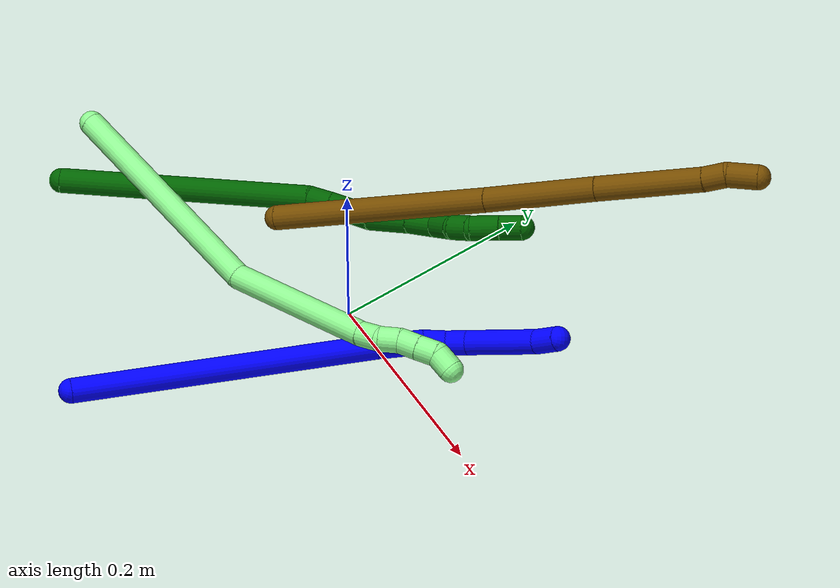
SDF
<sdf version="1.7">
 <world name="default">
  <model name="1">
   <static>0</static>
   <link name="1">
    <collision name="collision-cylinder-e_1_1_4">
     <pose>0.022921 0.064145 -0.136653 -2.70272 0.150683 -0.652706</pose>
     <geometry><cylinder><radius>0.0125</radius><length>0.305378</length></cylinder></geometry>
     <surface>
      <friction><ode><mu>1.16</mu><mu2>1.16</mu2><slip1>0</slip1><slip2>0</slip2></ode></friction>
      <contact><ode><kp>1e+06</kp><kd>1</kd><max_vel>0</max_vel><min_depth>0.001</min_depth></ode></contact>
     </surface>
    </collision>
    <visual name="visual-cylinder-e_1_1_4">
     <pose>0.022921 0.064145 -0.136653 -2.70272 0.150683 -0.652706</pose>
     <geometry><cylinder><radius>0.0125</radius><length>0.305378</length></cylinder></geometry>
     <material><ambient>0 0 1 1</ambient></material>
    </visual>
    <collision name="collision-cylinder-e_2_4_5">
     <pose>0.047817 0.135338 -0.296245 -2.8435 0.082147 -0.53429</pose>
     <geometry><cylinder><radius>0.0125</radius><length>0.048158</length></cylinder></geometry>
     <surface>
      <friction><ode><mu>1.16</mu><mu2>1.16</mu2><slip1>0</slip1><slip2>0</slip2></ode></friction>
      <contact><ode><kp>1e+06</kp><kd>1</kd><max_vel>0</max_vel><min_depth>0.001</min_depth></ode></contact>
     </surface>
    </collision>
    <visual name="visual-cylinder-e_2_4_5">
     <pose>0.047817 0.135338 -0.296245 -2.8435 0.082147 -0.53429</pose>
     <geometry><cylinder><radius>0.0125</radius><length>0.048158</length></cylinder></geometry>
     <material><ambient>0 0 1 1</ambient></material>
    </visual>
    <collision name="collision-cylinder-e_3_5_6">
     <pose>0.054937 0.147604 -0.328581 -2.63476 0.446343 -1.43916</pose>
     <geometry><cylinder><radius>0.0125</radius><length>0.023832</length></cylinder></geometry>
     <surface>
      <friction><ode><mu>1.16</mu><mu2>1.16</mu2><slip1>0</slip1><slip2>0</slip2></ode></friction>
      <contact><ode><kp>1e+06</kp><kd>1</kd><max_vel>0</max_vel><min_depth>0.001</min_depth></ode></contact>
     </surface>
    </collision>
    <visual name="visual-cylinder-e_3_5_6">
     <pose>0.054937 0.147604 -0.328581 -2.63476 0.446343 -1.43916</pose>
     <geometry><cylinder><radius>0.0125</radius><length>0.023832</length></cylinder></geometry>
     <material><ambient>0 0 1 1</ambient></material>
    </visual>
    <collision name="collision-cylinder-e_4_6_7">
     <pose>0.064917 0.158667 -0.345682 -2.49249 0.463746 -1.22387</pose>
     <geometry><cylinder><radius>0.0125</radius><length>0.021625</length></cylinder></geometry>
     <surface>
      <friction><ode><mu>1.16</mu><mu2>1.16</mu2><slip1>0</slip1><slip2>0</slip2></ode></friction>
      <contact><ode><kp>1e+06</kp><kd>1</kd><max_vel>0</max_vel><min_depth>0.001</min_depth></ode></contact>
     </surface>
    </collision>
    <visual name="visual-cylinder-e_4_6_7">
     <pose>0.064917 0.158667 -0.345682 -2.49249 0.463746 -1.22387</pose>
     <geometry><cylinder><radius>0.0125</radius><length>0.021625</length></cylinder></geometry>
     <material><ambient>0 0 1 1</ambient></material>
    </visual>
    <collision name="collision-cylinder-e_5_7_8">
     <pose>0.091701 0.188947 -0.372427 -2.23276 0.616407 -1.15509</pose>
     <geometry><cylinder><radius>0.0125</radius><length>0.075927</length></cylinder></geometry>
     <surface>
      <friction><ode><mu>1.16</mu><mu2>1.16</mu2><slip1>0</slip1><slip2>0</slip2></ode></friction>
      <contact><ode><kp>1e+06</kp><kd>1</kd><max_vel>0</max_vel><min_depth>0.001</min_depth></ode></contact>
     </surface>
    </collision>
    <visual name="visual-cylinder-e_5_7_8">
     <pose>0.091701 0.188947 -0.372427 -2.23276 0.616407 -1.15509</pose>
     <geometry><cylinder><radius>0.0125</radius><length>0.075927</length></cylinder></geometry>
     <material><ambient>0 0 1 1</ambient></material>
    </visual>
    <collision name="collision-cylinder-e_6_8_2">
     <pose>0.120514 0.222772 -0.396149 -2.0333 0.579422 -0.897833</pose>
     <geometry><cylinder><radius>0.0125</radius><length>0.02508</length></cylinder></geometry>
     <surface>
      <friction><ode><mu>1.16</mu><mu2>1.16</mu2><slip1>0</slip1><slip2>0</slip2></ode></friction>
      <contact><ode><kp>1e+06</kp><kd>1</kd><max_vel>0</max_vel><min_depth>0.001</min_depth></ode></contact>
     </surface>
    </collision>
    <visual name="visual-cylinder-e_6_8_2">
     <pose>0.120514 0.222772 -0.396149 -2.0333 0.579422 -0.897833</pose>
     <geometry><cylinder><radius>0.0125</radius><length>0.02508</length></cylinder></geometry>
     <material><ambient>0 0 1 1</ambient></material>
    </visual>
    <collision name="collision-sphere-2">
     <pose>0.12738 0.232162 -0.400831 0 -0 0</pose>
     <geometry><sphere><radius>0.0125</radius></sphere></geometry>
     <surface>
      <friction><ode><mu>1.16</mu><mu2>1.16</mu2><slip1>0</slip1><slip2>0</slip2></ode></friction>
      <contact><ode><kp>1e+06</kp><kd>1</kd><max_vel>0</max_vel><min_depth>0.001</min_depth></ode></contact>
     </surface>
    </collision>
    <visual name="visual-sphere-2">
     <pose>0.12738 0.232162 -0.400831 0 -0 0</pose>
     <geometry><sphere><radius>0.0125</radius></sphere></geometry>
     <material><ambient>0 0 1 1</ambient></material>
    </visual>
    <collision name="collision-sphere-4">
     <pose>0.045841 0.12829 -0.273305 0 -0 0</pose>
     <geometry><sphere><radius>0.0125</radius></sphere></geometry>
     <surface>
      <friction><ode><mu>1.16</mu><mu2>1.16</mu2><slip1>0</slip1><slip2>0</slip2></ode></friction>
      <contact><ode><kp>1e+06</kp><kd>1</kd><max_vel>0</max_vel><min_depth>0.001</min_depth></ode></contact>
     </surface>
    </collision>
    <visual name="visual-sphere-4">
     <pose>0.045841 0.12829 -0.273305 0 -0 0</pose>
     <geometry><sphere><radius>0.0125</radius></sphere></geometry>
     <material><ambient>0 0 1 1</ambient></material>
    </visual>
    <collision name="collision-sphere-1">
     <geometry><sphere><radius>0.0125</radius></sphere></geometry>
     <surface>
      <friction><ode><mu>1.16</mu><mu2>1.16</mu2><slip1>0</slip1><slip2>0</slip2></ode></friction>
      <contact><ode><kp>1e+06</kp><kd>1</kd><max_vel>0</max_vel><min_depth>0.001</min_depth></ode></contact>
     </surface>
    </collision>
    <visual name="visual-sphere-1">
     <geometry><sphere><radius>0.0125</radius></sphere></geometry>
     <material><ambient>0 0 1 1</ambient></material>
    </visual>
    <collision name="collision-sphere-8">
     <pose>0.113648 0.213381 -0.391467 0 -0 0</pose>
     <geometry><sphere><radius>0.0125</radius></sphere></geometry>
     <surface>
      <friction><ode><mu>1.16</mu><mu2>1.16</mu2><slip1>0</slip1><slip2>0</slip2></ode></friction>
      <contact><ode><kp>1e+06</kp><kd>1</kd><max_vel>0</max_vel><min_depth>0.001</min_depth></ode></contact>
     </surface>
    </collision>
    <visual name="visual-sphere-8">
     <pose>0.113648 0.213381 -0.391467 0 -0 0</pose>
     <geometry><sphere><radius>0.0125</radius></sphere></geometry>
     <material><ambient>0 0 1 1</ambient></material>
    </visual>
    <collision name="collision-sphere-5">
     <pose>0.049793 0.142386 -0.319184 0 -0 0</pose>
     <geometry><sphere><radius>0.0125</radius></sphere></geometry>
     <surface>
      <friction><ode><mu>1.16</mu><mu2>1.16</mu2><slip1>0</slip1><slip2>0</slip2></ode></friction>
      <contact><ode><kp>1e+06</kp><kd>1</kd><max_vel>0</max_vel><min_depth>0.001</min_depth></ode></contact>
     </surface>
    </collision>
    <visual name="visual-sphere-5">
     <pose>0.049793 0.142386 -0.319184 0 -0 0</pose>
     <geometry><sphere><radius>0.0125</radius></sphere></geometry>
     <material><ambient>0 0 1 1</ambient></material>
    </visual>
    <collision name="collision-sphere-6">
     <pose>0.060081 0.152821 -0.337978 0 -0 0</pose>
     <geometry><sphere><radius>0.0125</radius></sphere></geometry>
     <surface>
      <friction><ode><mu>1.16</mu><mu2>1.16</mu2><slip1>0</slip1><slip2>0</slip2></ode></friction>
      <contact><ode><kp>1e+06</kp><kd>1</kd><max_vel>0</max_vel><min_depth>0.001</min_depth></ode></contact>
     </surface>
    </collision>
    <visual name="visual-sphere-6">
     <pose>0.060081 0.152821 -0.337978 0 -0 0</pose>
     <geometry><sphere><radius>0.0125</radius></sphere></geometry>
     <material><ambient>0 0 1 1</ambient></material>
    </visual>
    <collision name="collision-sphere-7">
     <pose>0.069754 0.164512 -0.353386 0 -0 0</pose>
     <geometry><sphere><radius>0.0125</radius></sphere></geometry>
     <surface>
      <friction><ode><mu>1.16</mu><mu2>1.16</mu2><slip1>0</slip1><slip2>0</slip2></ode></friction>
      <contact><ode><kp>1e+06</kp><kd>1</kd><max_vel>0</max_vel><min_depth>0.001</min_depth></ode></contact>
     </surface>
    </collision>
    <visual name="visual-sphere-7">
     <pose>0.069754 0.164512 -0.353386 0 -0 0</pose>
     <geometry><sphere><radius>0.0125</radius></sphere></geometry>
     <material><ambient>0 0 1 1</ambient></material>
    </visual>
    <inertial>
     <pose>0.044001 0.105977 -0.219032 0 -0 0</pose>
     <mass>0.5</mass>
     <inertia>
      <ixx>0.000436</ixx>
      <ixy>0</ixy>
      <ixz>0</ixz>
      <iyy>-0.003079</iyy>
      <iyz>0</iyz>
      <izz>-0.00145</izz>
     </inertia>
    </inertial>
   </link>
   <pose>-0.056662 -0.288505 0.031973 1.07527 -0.117271 -0.23255</pose>
  </model>
  <model name="6">
   <static>0</static>
   <link name="6">
    <collision name="collision-cylinder-e_1_1_4">
     <pose>0.065911 0.107809 -0.009285 -1.65671 0.547092 -0.593507</pose>
     <geometry><cylinder><radius>0.0125</radius><length>0.253402</length></cylinder></geometry>
     <surface>
      <friction><ode><mu>1.16</mu><mu2>1.16</mu2><slip1>0</slip1><slip2>0</slip2></ode></friction>
      <contact><ode><kp>1e+06</kp><kd>1</kd><max_vel>0</max_vel><min_depth>0.001</min_depth></ode></contact>
     </surface>
    </collision>
    <visual name="visual-cylinder-e_1_1_4">
     <pose>0.065911 0.107809 -0.009285 -1.65671 0.547092 -0.593507</pose>
     <geometry><cylinder><radius>0.0125</radius><length>0.253402</length></cylinder></geometry>
     <material><ambient>0 0.392157 0.003922 1</ambient></material>
    </visual>
    <collision name="collision-cylinder-e_2_4_5">
     <pose>0.13975 0.223957 -0.01952 -1.68426 0.756965 -0.838283</pose>
     <geometry><cylinder><radius>0.0125</radius><length>0.023093</length></cylinder></geometry>
     <surface>
      <friction><ode><mu>1.16</mu><mu2>1.16</mu2><slip1>0</slip1><slip2>0</slip2></ode></friction>
      <contact><ode><kp>1e+06</kp><kd>1</kd><max_vel>0</max_vel><min_depth>0.001</min_depth></ode></contact>
     </surface>
    </collision>
    <visual name="visual-cylinder-e_2_4_5">
     <pose>0.13975 0.223957 -0.01952 -1.68426 0.756965 -0.838283</pose>
     <geometry><cylinder><radius>0.0125</radius><length>0.023093</length></cylinder></geometry>
     <material><ambient>0 0.392157 0.003922 1</ambient></material>
    </visual>
    <collision name="collision-cylinder-e_3_5_6">
     <pose>0.163622 0.247739 -0.019375 -1.49998 0.800094 -0.750503</pose>
     <geometry><cylinder><radius>0.0125</radius><length>0.044445</length></cylinder></geometry>
     <surface>
      <friction><ode><mu>1.16</mu><mu2>1.16</mu2><slip1>0</slip1><slip2>0</slip2></ode></friction>
      <contact><ode><kp>1e+06</kp><kd>1</kd><max_vel>0</max_vel><min_depth>0.001</min_depth></ode></contact>
     </surface>
    </collision>
    <visual name="visual-cylinder-e_3_5_6">
     <pose>0.163622 0.247739 -0.019375 -1.49998 0.800094 -0.750503</pose>
     <geometry><cylinder><radius>0.0125</radius><length>0.044445</length></cylinder></geometry>
     <material><ambient>0 0.392157 0.003922 1</ambient></material>
    </visual>
    <collision name="collision-cylinder-e_4_6_7">
     <pose>0.191883 0.281657 -0.011349 -1.21191 0.55802 -0.39192</pose>
     <geometry><cylinder><radius>0.0125</radius><length>0.046524</length></cylinder></geometry>
     <surface>
      <friction><ode><mu>1.16</mu><mu2>1.16</mu2><slip1>0</slip1><slip2>0</slip2></ode></friction>
      <contact><ode><kp>1e+06</kp><kd>1</kd><max_vel>0</max_vel><min_depth>0.001</min_depth></ode></contact>
     </surface>
    </collision>
    <visual name="visual-cylinder-e_4_6_7">
     <pose>0.191883 0.281657 -0.011349 -1.21191 0.55802 -0.39192</pose>
     <geometry><cylinder><radius>0.0125</radius><length>0.046524</length></cylinder></geometry>
     <material><ambient>0 0.392157 0.003922 1</ambient></material>
    </visual>
    <collision name="collision-cylinder-e_5_7_8">
     <pose>0.213056 0.311847 0.000531 -1.17108 0.608305 -0.410433</pose>
     <geometry><cylinder><radius>0.0125</radius><length>0.030993</length></cylinder></geometry>
     <surface>
      <friction><ode><mu>1.16</mu><mu2>1.16</mu2><slip1>0</slip1><slip2>0</slip2></ode></friction>
      <contact><ode><kp>1e+06</kp><kd>1</kd><max_vel>0</max_vel><min_depth>0.001</min_depth></ode></contact>
     </surface>
    </collision>
    <visual name="visual-cylinder-e_5_7_8">
     <pose>0.213056 0.311847 0.000531 -1.17108 0.608305 -0.410433</pose>
     <geometry><cylinder><radius>0.0125</radius><length>0.030993</length></cylinder></geometry>
     <material><ambient>0 0.392157 0.003922 1</ambient></material>
    </visual>
    <collision name="collision-cylinder-e_6_8_9">
     <pose>0.22852 0.331915 0.015052 -0.717532 0.479621 -0.182873</pose>
     <geometry><cylinder><radius>0.0125</radius><length>0.028642</length></cylinder></geometry>
     <surface>
      <friction><ode><mu>1.16</mu><mu2>1.16</mu2><slip1>0</slip1><slip2>0</slip2></ode></friction>
      <contact><ode><kp>1e+06</kp><kd>1</kd><max_vel>0</max_vel><min_depth>0.001</min_depth></ode></contact>
     </surface>
    </collision>
    <visual name="visual-cylinder-e_6_8_9">
     <pose>0.22852 0.331915 0.015052 -0.717532 0.479621 -0.182873</pose>
     <geometry><cylinder><radius>0.0125</radius><length>0.028642</length></cylinder></geometry>
     <material><ambient>0 0.392157 0.003922 1</ambient></material>
    </visual>
    <collision name="collision-cylinder-e_7_9_10">
     <pose>0.240555 0.348689 0.028919 -1.09907 0.521161 -0.323763</pose>
     <geometry><cylinder><radius>0.0125</radius><length>0.021797</length></cylinder></geometry>
     <surface>
      <friction><ode><mu>1.16</mu><mu2>1.16</mu2><slip1>0</slip1><slip2>0</slip2></ode></friction>
      <contact><ode><kp>1e+06</kp><kd>1</kd><max_vel>0</max_vel><min_depth>0.001</min_depth></ode></contact>
     </surface>
    </collision>
    <visual name="visual-cylinder-e_7_9_10">
     <pose>0.240555 0.348689 0.028919 -1.09907 0.521161 -0.323763</pose>
     <geometry><cylinder><radius>0.0125</radius><length>0.021797</length></cylinder></geometry>
     <material><ambient>0 0.392157 0.003922 1</ambient></material>
    </visual>
    <collision name="collision-cylinder-e_8_10_11">
     <pose>0.252465 0.369982 0.032879 -1.59684 0.46645 -0.4783</pose>
     <geometry><cylinder><radius>0.0125</radius><length>0.028837</length></cylinder></geometry>
     <surface>
      <friction><ode><mu>1.16</mu><mu2>1.16</mu2><slip1>0</slip1><slip2>0</slip2></ode></friction>
      <contact><ode><kp>1e+06</kp><kd>1</kd><max_vel>0</max_vel><min_depth>0.001</min_depth></ode></contact>
     </surface>
    </collision>
    <visual name="visual-cylinder-e_8_10_11">
     <pose>0.252465 0.369982 0.032879 -1.59684 0.46645 -0.4783</pose>
     <geometry><cylinder><radius>0.0125</radius><length>0.028837</length></cylinder></geometry>
     <material><ambient>0 0.392157 0.003922 1</ambient></material>
    </visual>
    <collision name="collision-cylinder-e_9_11_2">
     <pose>0.26396 0.392756 0.031638 -1.66207 0.466857 -0.509706</pose>
     <geometry><cylinder><radius>0.0125</radius><length>0.022267</length></cylinder></geometry>
     <surface>
      <friction><ode><mu>1.16</mu><mu2>1.16</mu2><slip1>0</slip1><slip2>0</slip2></ode></friction>
      <contact><ode><kp>1e+06</kp><kd>1</kd><max_vel>0</max_vel><min_depth>0.001</min_depth></ode></contact>
     </surface>
    </collision>
    <visual name="visual-cylinder-e_9_11_2">
     <pose>0.26396 0.392756 0.031638 -1.66207 0.466857 -0.509706</pose>
     <geometry><cylinder><radius>0.0125</radius><length>0.022267</length></cylinder></geometry>
     <material><ambient>0 0.392157 0.003922 1</ambient></material>
    </visual>
    <collision name="collision-sphere-2">
     <pose>0.268972 0.402657 0.030731 0 -0 0</pose>
     <geometry><sphere><radius>0.0125</radius></sphere></geometry>
     <surface>
      <friction><ode><mu>1.16</mu><mu2>1.16</mu2><slip1>0</slip1><slip2>0</slip2></ode></friction>
      <contact><ode><kp>1e+06</kp><kd>1</kd><max_vel>0</max_vel><min_depth>0.001</min_depth></ode></contact>
     </surface>
    </collision>
    <visual name="visual-sphere-2">
     <pose>0.268972 0.402657 0.030731 0 -0 0</pose>
     <geometry><sphere><radius>0.0125</radius></sphere></geometry>
     <material><ambient>0 0.392157 0.003922 1</ambient></material>
    </visual>
    <collision name="collision-sphere-11">
     <pose>0.258949 0.382856 0.032544 0 -0 0</pose>
     <geometry><sphere><radius>0.0125</radius></sphere></geometry>
     <surface>
      <friction><ode><mu>1.16</mu><mu2>1.16</mu2><slip1>0</slip1><slip2>0</slip2></ode></friction>
      <contact><ode><kp>1e+06</kp><kd>1</kd><max_vel>0</max_vel><min_depth>0.001</min_depth></ode></contact>
     </surface>
    </collision>
    <visual name="visual-sphere-11">
     <pose>0.258949 0.382856 0.032544 0 -0 0</pose>
     <geometry><sphere><radius>0.0125</radius></sphere></geometry>
     <material><ambient>0 0.392157 0.003922 1</ambient></material>
    </visual>
    <collision name="collision-sphere-10">
     <pose>0.245981 0.357108 0.033214 0 -0 0</pose>
     <geometry><sphere><radius>0.0125</radius></sphere></geometry>
     <surface>
      <friction><ode><mu>1.16</mu><mu2>1.16</mu2><slip1>0</slip1><slip2>0</slip2></ode></friction>
      <contact><ode><kp>1e+06</kp><kd>1</kd><max_vel>0</max_vel><min_depth>0.001</min_depth></ode></contact>
     </surface>
    </collision>
    <visual name="visual-sphere-10">
     <pose>0.245981 0.357108 0.033214 0 -0 0</pose>
     <geometry><sphere><radius>0.0125</radius></sphere></geometry>
     <material><ambient>0 0.392157 0.003922 1</ambient></material>
    </visual>
    <collision name="collision-sphere-9">
     <pose>0.235128 0.340269 0.024625 0 -0 0</pose>
     <geometry><sphere><radius>0.0125</radius></sphere></geometry>
     <surface>
      <friction><ode><mu>1.16</mu><mu2>1.16</mu2><slip1>0</slip1><slip2>0</slip2></ode></friction>
      <contact><ode><kp>1e+06</kp><kd>1</kd><max_vel>0</max_vel><min_depth>0.001</min_depth></ode></contact>
     </surface>
    </collision>
    <visual name="visual-sphere-9">
     <pose>0.235128 0.340269 0.024625 0 -0 0</pose>
     <geometry><sphere><radius>0.0125</radius></sphere></geometry>
     <material><ambient>0 0.392157 0.003922 1</ambient></material>
    </visual>
    <collision name="collision-sphere-4">
     <pose>0.131821 0.215617 -0.01857 0 -0 0</pose>
     <geometry><sphere><radius>0.0125</radius></sphere></geometry>
     <surface>
      <friction><ode><mu>1.16</mu><mu2>1.16</mu2><slip1>0</slip1><slip2>0</slip2></ode></friction>
      <contact><ode><kp>1e+06</kp><kd>1</kd><max_vel>0</max_vel><min_depth>0.001</min_depth></ode></contact>
     </surface>
    </collision>
    <visual name="visual-sphere-4">
     <pose>0.131821 0.215617 -0.01857 0 -0 0</pose>
     <geometry><sphere><radius>0.0125</radius></sphere></geometry>
     <material><ambient>0 0.392157 0.003922 1</ambient></material>
    </visual>
    <collision name="collision-sphere-1">
     <geometry><sphere><radius>0.0125</radius></sphere></geometry>
     <surface>
      <friction><ode><mu>1.16</mu><mu2>1.16</mu2><slip1>0</slip1><slip2>0</slip2></ode></friction>
      <contact><ode><kp>1e+06</kp><kd>1</kd><max_vel>0</max_vel><min_depth>0.001</min_depth></ode></contact>
     </surface>
    </collision>
    <visual name="visual-sphere-1">
     <geometry><sphere><radius>0.0125</radius></sphere></geometry>
     <material><ambient>0 0.392157 0.003922 1</ambient></material>
    </visual>
    <collision name="collision-sphere-8">
     <pose>0.221912 0.323561 0.00548 0 -0 0</pose>
     <geometry><sphere><radius>0.0125</radius></sphere></geometry>
     <surface>
      <friction><ode><mu>1.16</mu><mu2>1.16</mu2><slip1>0</slip1><slip2>0</slip2></ode></friction>
      <contact><ode><kp>1e+06</kp><kd>1</kd><max_vel>0</max_vel><min_depth>0.001</min_depth></ode></contact>
     </surface>
    </collision>
    <visual name="visual-sphere-8">
     <pose>0.221912 0.323561 0.00548 0 -0 0</pose>
     <geometry><sphere><radius>0.0125</radius></sphere></geometry>
     <material><ambient>0 0.392157 0.003922 1</ambient></material>
    </visual>
    <collision name="collision-sphere-5">
     <pose>0.147679 0.232296 -0.020471 0 -0 0</pose>
     <geometry><sphere><radius>0.0125</radius></sphere></geometry>
     <surface>
      <friction><ode><mu>1.16</mu><mu2>1.16</mu2><slip1>0</slip1><slip2>0</slip2></ode></friction>
      <contact><ode><kp>1e+06</kp><kd>1</kd><max_vel>0</max_vel><min_depth>0.001</min_depth></ode></contact>
     </surface>
    </collision>
    <visual name="visual-sphere-5">
     <pose>0.147679 0.232296 -0.020471 0 -0 0</pose>
     <geometry><sphere><radius>0.0125</radius></sphere></geometry>
     <material><ambient>0 0.392157 0.003922 1</ambient></material>
    </visual>
    <collision name="collision-sphere-6">
     <pose>0.179565 0.263181 -0.01828 0 -0 0</pose>
     <geometry><sphere><radius>0.0125</radius></sphere></geometry>
     <surface>
      <friction><ode><mu>1.16</mu><mu2>1.16</mu2><slip1>0</slip1><slip2>0</slip2></ode></friction>
      <contact><ode><kp>1e+06</kp><kd>1</kd><max_vel>0</max_vel><min_depth>0.001</min_depth></ode></contact>
     </surface>
    </collision>
    <visual name="visual-sphere-6">
     <pose>0.179565 0.263181 -0.01828 0 -0 0</pose>
     <geometry><sphere><radius>0.0125</radius></sphere></geometry>
     <material><ambient>0 0.392157 0.003922 1</ambient></material>
    </visual>
    <collision name="collision-sphere-7">
     <pose>0.2042 0.300133 -0.004418 0 -0 0</pose>
     <geometry><sphere><radius>0.0125</radius></sphere></geometry>
     <surface>
      <friction><ode><mu>1.16</mu><mu2>1.16</mu2><slip1>0</slip1><slip2>0</slip2></ode></friction>
      <contact><ode><kp>1e+06</kp><kd>1</kd><max_vel>0</max_vel><min_depth>0.001</min_depth></ode></contact>
     </surface>
    </collision>
    <visual name="visual-sphere-7">
     <pose>0.2042 0.300133 -0.004418 0 -0 0</pose>
     <geometry><sphere><radius>0.0125</radius></sphere></geometry>
     <material><ambient>0 0.392157 0.003922 1</ambient></material>
    </visual>
    <inertial>
     <pose>0.135357 0.205584 -0.002924 0 -0 0</pose>
     <mass>0.5</mass>
     <inertia>
      <ixx>0.000347</ixx>
      <ixy>0</ixy>
      <ixz>0</ixz>
      <iyy>-0.000318</iyy>
      <iyz>0</iyz>
      <izz>-0.001916</izz>
     </inertia>
    </inertial>
   </link>
   <pose>-0.275079 -0.16623 0.036444 0.43975 0.363596 -0.098549</pose>
  </model>
  <model name="12">
   <static>0</static>
   <link name="12">
    <collision name="collision-cylinder-e_1_1_4">
     <pose>0.039968 0.046078 0.093718 -0.456956 0.365516 -0.085903</pose>
     <geometry><cylinder><radius>0.0125</radius><length>0.223639</length></cylinder></geometry>
     <surface>
      <friction><ode><mu>1.16</mu><mu2>1.16</mu2><slip1>0</slip1><slip2>0</slip2></ode></friction>
      <contact><ode><kp>1e+06</kp><kd>1</kd><max_vel>0</max_vel><min_depth>0.001</min_depth></ode></contact>
     </surface>
    </collision>
    <visual name="visual-cylinder-e_1_1_4">
     <pose>0.039968 0.046078 0.093718 -0.456956 0.365516 -0.085903</pose>
     <geometry><cylinder><radius>0.0125</radius><length>0.223639</length></cylinder></geometry>
     <material><ambient>0.466667 0.301961 0 1</ambient></material>
    </visual>
    <collision name="collision-cylinder-e_2_4_5">
     <pose>0.099252 0.116754 0.235085 -0.476561 0.345749 -0.084777</pose>
     <geometry><cylinder><radius>0.0125</radius><length>0.113994</length></cylinder></geometry>
     <surface>
      <friction><ode><mu>1.16</mu><mu2>1.16</mu2><slip1>0</slip1><slip2>0</slip2></ode></friction>
      <contact><ode><kp>1e+06</kp><kd>1</kd><max_vel>0</max_vel><min_depth>0.001</min_depth></ode></contact>
     </surface>
    </collision>
    <visual name="visual-cylinder-e_2_4_5">
     <pose>0.099252 0.116754 0.235085 -0.476561 0.345749 -0.084777</pose>
     <geometry><cylinder><radius>0.0125</radius><length>0.113994</length></cylinder></geometry>
     <material><ambient>0.466667 0.301961 0 1</ambient></material>
    </visual>
    <collision name="collision-cylinder-e_3_5_6">
     <pose>0.13729 0.166073 0.327292 -0.506504 0.352106 -0.092017</pose>
     <geometry><cylinder><radius>0.0125</radius><length>0.108573</length></cylinder></geometry>
     <surface>
      <friction><ode><mu>1.16</mu><mu2>1.16</mu2><slip1>0</slip1><slip2>0</slip2></ode></friction>
      <contact><ode><kp>1e+06</kp><kd>1</kd><max_vel>0</max_vel><min_depth>0.001</min_depth></ode></contact>
     </surface>
    </collision>
    <visual name="visual-cylinder-e_3_5_6">
     <pose>0.13729 0.166073 0.327292 -0.506504 0.352106 -0.092017</pose>
     <geometry><cylinder><radius>0.0125</radius><length>0.108573</length></cylinder></geometry>
     <material><ambient>0.466667 0.301961 0 1</ambient></material>
    </visual>
    <collision name="collision-cylinder-e_4_6_7">
     <pose>0.15878 0.196229 0.381708 -0.503991 0.241093 -0.062356</pose>
     <geometry><cylinder><radius>0.0125</radius><length>0.023185</length></cylinder></geometry>
     <surface>
      <friction><ode><mu>1.16</mu><mu2>1.16</mu2><slip1>0</slip1><slip2>0</slip2></ode></friction>
      <contact><ode><kp>1e+06</kp><kd>1</kd><max_vel>0</max_vel><min_depth>0.001</min_depth></ode></contact>
     </surface>
    </collision>
    <visual name="visual-cylinder-e_4_6_7">
     <pose>0.15878 0.196229 0.381708 -0.503991 0.241093 -0.062356</pose>
     <geometry><cylinder><radius>0.0125</radius><length>0.023185</length></cylinder></geometry>
     <material><ambient>0.466667 0.301961 0 1</ambient></material>
    </visual>
    <collision name="collision-cylinder-e_5_7_2">
     <pose>0.168499 0.210694 0.401783 -0.723754 0.471471 -0.181356</pose>
     <geometry><cylinder><radius>0.0125</radius><length>0.030608</length></cylinder></geometry>
     <surface>
      <friction><ode><mu>1.16</mu><mu2>1.16</mu2><slip1>0</slip1><slip2>0</slip2></ode></friction>
      <contact><ode><kp>1e+06</kp><kd>1</kd><max_vel>0</max_vel><min_depth>0.001</min_depth></ode></contact>
     </surface>
    </collision>
    <visual name="visual-cylinder-e_5_7_2">
     <pose>0.168499 0.210694 0.401783 -0.723754 0.471471 -0.181356</pose>
     <geometry><cylinder><radius>0.0125</radius><length>0.030608</length></cylinder></geometry>
     <material><ambient>0.466667 0.301961 0 1</ambient></material>
    </visual>
    <collision name="collision-sphere-2">
     <pose>0.175451 0.219723 0.411999 0 -0 0</pose>
     <geometry><sphere><radius>0.0125</radius></sphere></geometry>
     <surface>
      <friction><ode><mu>1.16</mu><mu2>1.16</mu2><slip1>0</slip1><slip2>0</slip2></ode></friction>
      <contact><ode><kp>1e+06</kp><kd>1</kd><max_vel>0</max_vel><min_depth>0.001</min_depth></ode></contact>
     </surface>
    </collision>
    <visual name="visual-sphere-2">
     <pose>0.175451 0.219723 0.411999 0 -0 0</pose>
     <geometry><sphere><radius>0.0125</radius></sphere></geometry>
     <material><ambient>0.466667 0.301961 0 1</ambient></material>
    </visual>
    <collision name="collision-sphere-7">
     <pose>0.161548 0.201666 0.391566 0 -0 0</pose>
     <geometry><sphere><radius>0.0125</radius></sphere></geometry>
     <surface>
      <friction><ode><mu>1.16</mu><mu2>1.16</mu2><slip1>0</slip1><slip2>0</slip2></ode></friction>
      <contact><ode><kp>1e+06</kp><kd>1</kd><max_vel>0</max_vel><min_depth>0.001</min_depth></ode></contact>
     </surface>
    </collision>
    <visual name="visual-sphere-7">
     <pose>0.161548 0.201666 0.391566 0 -0 0</pose>
     <geometry><sphere><radius>0.0125</radius></sphere></geometry>
     <material><ambient>0.466667 0.301961 0 1</ambient></material>
    </visual>
    <collision name="collision-sphere-6">
     <pose>0.156013 0.190793 0.371851 0 -0 0</pose>
     <geometry><sphere><radius>0.0125</radius></sphere></geometry>
     <surface>
      <friction><ode><mu>1.16</mu><mu2>1.16</mu2><slip1>0</slip1><slip2>0</slip2></ode></friction>
      <contact><ode><kp>1e+06</kp><kd>1</kd><max_vel>0</max_vel><min_depth>0.001</min_depth></ode></contact>
     </surface>
    </collision>
    <visual name="visual-sphere-6">
     <pose>0.156013 0.190793 0.371851 0 -0 0</pose>
     <geometry><sphere><radius>0.0125</radius></sphere></geometry>
     <material><ambient>0.466667 0.301961 0 1</ambient></material>
    </visual>
    <collision name="collision-sphere-5">
     <pose>0.118568 0.141353 0.282734 0 -0 0</pose>
     <geometry><sphere><radius>0.0125</radius></sphere></geometry>
     <surface>
      <friction><ode><mu>1.16</mu><mu2>1.16</mu2><slip1>0</slip1><slip2>0</slip2></ode></friction>
      <contact><ode><kp>1e+06</kp><kd>1</kd><max_vel>0</max_vel><min_depth>0.001</min_depth></ode></contact>
     </surface>
    </collision>
    <visual name="visual-sphere-5">
     <pose>0.118568 0.141353 0.282734 0 -0 0</pose>
     <geometry><sphere><radius>0.0125</radius></sphere></geometry>
     <material><ambient>0.466667 0.301961 0 1</ambient></material>
    </visual>
    <collision name="collision-sphere-1">
     <geometry><sphere><radius>0.0125</radius></sphere></geometry>
     <surface>
      <friction><ode><mu>1.16</mu><mu2>1.16</mu2><slip1>0</slip1><slip2>0</slip2></ode></friction>
      <contact><ode><kp>1e+06</kp><kd>1</kd><max_vel>0</max_vel><min_depth>0.001</min_depth></ode></contact>
     </surface>
    </collision>
    <visual name="visual-sphere-1">
     <geometry><sphere><radius>0.0125</radius></sphere></geometry>
     <material><ambient>0.466667 0.301961 0 1</ambient></material>
    </visual>
    <collision name="collision-sphere-4">
     <pose>0.079936 0.092155 0.187436 0 -0 0</pose>
     <geometry><sphere><radius>0.0125</radius></sphere></geometry>
     <surface>
      <friction><ode><mu>1.16</mu><mu2>1.16</mu2><slip1>0</slip1><slip2>0</slip2></ode></friction>
      <contact><ode><kp>1e+06</kp><kd>1</kd><max_vel>0</max_vel><min_depth>0.001</min_depth></ode></contact>
     </surface>
    </collision>
    <visual name="visual-sphere-4">
     <pose>0.079936 0.092155 0.187436 0 -0 0</pose>
     <geometry><sphere><radius>0.0125</radius></sphere></geometry>
     <material><ambient>0.466667 0.301961 0 1</ambient></material>
    </visual>
    <inertial>
     <pose>0.087995 0.105287 0.208881 0 -0 0</pose>
     <mass>0.5</mass>
     <inertia>
      <ixx>0.001022</ixx>
      <ixy>0</ixy>
      <ixz>0</ixz>
      <iyy>0.000993</iyy>
      <iyz>0</iyz>
      <izz>-0.000884</izz>
     </inertia>
    </inertial>
   </link>
   <pose>-0.101267 -0.018909 0.062245 -0.61179 0.253968 -0.230481</pose>
  </model>
  <model name="13">
   <static>0</static>
   <link name="13">
    <collision name="collision-cylinder-e_1_1_4">
     <pose>0.004685 -0.007091 -0.119666 3.0824 0.03906 1.16648</pose>
     <geometry><cylinder><radius>0.0125</radius><length>0.239935</length></cylinder></geometry>
     <surface>
      <friction><ode><mu>1.16</mu><mu2>1.16</mu2><slip1>0</slip1><slip2>0</slip2></ode></friction>
      <contact><ode><kp>1e+06</kp><kd>1</kd><max_vel>0</max_vel><min_depth>0.001</min_depth></ode></contact>
     </surface>
    </collision>
    <visual name="visual-cylinder-e_1_1_4">
     <pose>0.004685 -0.007091 -0.119666 3.0824 0.03906 1.16648</pose>
     <geometry><cylinder><radius>0.0125</radius><length>0.239935</length></cylinder></geometry>
     <material><ambient>0.564706 0.984314 0.572549 1</ambient></material>
    </visual>
    <collision name="collision-cylinder-e_2_4_5">
     <pose>0.038248 -0.018292 -0.312529 3.08551 0.375249 2.84824</pose>
     <geometry><cylinder><radius>0.0125</radius><length>0.157589</length></cylinder></geometry>
     <surface>
      <friction><ode><mu>1.16</mu><mu2>1.16</mu2><slip1>0</slip1><slip2>0</slip2></ode></friction>
      <contact><ode><kp>1e+06</kp><kd>1</kd><max_vel>0</max_vel><min_depth>0.001</min_depth></ode></contact>
     </surface>
    </collision>
    <visual name="visual-cylinder-e_2_4_5">
     <pose>0.038248 -0.018292 -0.312529 3.08551 0.375249 2.84824</pose>
     <geometry><cylinder><radius>0.0125</radius><length>0.157589</length></cylinder></geometry>
     <material><ambient>0.564706 0.984314 0.572549 1</ambient></material>
    </visual>
    <collision name="collision-cylinder-e_3_5_6">
     <pose>0.072538 -0.02286 -0.395277 3.09366 0.514953 2.96003</pose>
     <geometry><cylinder><radius>0.0125</radius><length>0.021975</length></cylinder></geometry>
     <surface>
      <friction><ode><mu>1.16</mu><mu2>1.16</mu2><slip1>0</slip1><slip2>0</slip2></ode></friction>
      <contact><ode><kp>1e+06</kp><kd>1</kd><max_vel>0</max_vel><min_depth>0.001</min_depth></ode></contact>
     </surface>
    </collision>
    <visual name="visual-cylinder-e_3_5_6">
     <pose>0.072538 -0.02286 -0.395277 3.09366 0.514953 2.96003</pose>
     <geometry><cylinder><radius>0.0125</radius><length>0.021975</length></cylinder></geometry>
     <material><ambient>0.564706 0.984314 0.572549 1</ambient></material>
    </visual>
    <collision name="collision-cylinder-e_4_6_7">
     <pose>0.083583 -0.019656 -0.41256 -2.69922 0.582392 -1.85427</pose>
     <geometry><cylinder><radius>0.0125</radius><length>0.020488</length></cylinder></geometry>
     <surface>
      <friction><ode><mu>1.16</mu><mu2>1.16</mu2><slip1>0</slip1><slip2>0</slip2></ode></friction>
      <contact><ode><kp>1e+06</kp><kd>1</kd><max_vel>0</max_vel><min_depth>0.001</min_depth></ode></contact>
     </surface>
    </collision>
    <visual name="visual-cylinder-e_4_6_7">
     <pose>0.083583 -0.019656 -0.41256 -2.69922 0.582392 -1.85427</pose>
     <geometry><cylinder><radius>0.0125</radius><length>0.020488</length></cylinder></geometry>
     <material><ambient>0.564706 0.984314 0.572549 1</ambient></material>
    </visual>
    <collision name="collision-cylinder-e_5_7_8">
     <pose>0.092923 -0.014243 -0.429418 -2.95214 0.379389 -2.22256</pose>
     <geometry><cylinder><radius>0.0125</radius><length>0.020009</length></cylinder></geometry>
     <surface>
      <friction><ode><mu>1.16</mu><mu2>1.16</mu2><slip1>0</slip1><slip2>0</slip2></ode></friction>
      <contact><ode><kp>1e+06</kp><kd>1</kd><max_vel>0</max_vel><min_depth>0.001</min_depth></ode></contact>
     </surface>
    </collision>
    <visual name="visual-cylinder-e_5_7_8">
     <pose>0.092923 -0.014243 -0.429418 -2.95214 0.379389 -2.22256</pose>
     <geometry><cylinder><radius>0.0125</radius><length>0.020009</length></cylinder></geometry>
     <material><ambient>0.564706 0.984314 0.572549 1</ambient></material>
    </visual>
    <collision name="collision-cylinder-e_6_8_9">
     <pose>0.100454 -0.010517 -0.447571 -2.92608 0.392646 -2.14529</pose>
     <geometry><cylinder><radius>0.0125</radius><length>0.020001</length></cylinder></geometry>
     <surface>
      <friction><ode><mu>1.16</mu><mu2>1.16</mu2><slip1>0</slip1><slip2>0</slip2></ode></friction>
      <contact><ode><kp>1e+06</kp><kd>1</kd><max_vel>0</max_vel><min_depth>0.001</min_depth></ode></contact>
     </surface>
    </collision>
    <visual name="visual-cylinder-e_6_8_9">
     <pose>0.100454 -0.010517 -0.447571 -2.92608 0.392646 -2.14529</pose>
     <geometry><cylinder><radius>0.0125</radius><length>0.020001</length></cylinder></geometry>
     <material><ambient>0.564706 0.984314 0.572549 1</ambient></material>
    </visual>
    <collision name="collision-cylinder-e_7_9_2">
     <pose>0.103252 -0.007431 -0.466483 -3.02979 -0.103044 1.48916</pose>
     <geometry><cylinder><radius>0.0125</radius><length>0.020004</length></cylinder></geometry>
     <surface>
      <friction><ode><mu>1.16</mu><mu2>1.16</mu2><slip1>0</slip1><slip2>0</slip2></ode></friction>
      <contact><ode><kp>1e+06</kp><kd>1</kd><max_vel>0</max_vel><min_depth>0.001</min_depth></ode></contact>
     </surface>
    </collision>
    <visual name="visual-cylinder-e_7_9_2">
     <pose>0.103252 -0.007431 -0.466483 -3.02979 -0.103044 1.48916</pose>
     <geometry><cylinder><radius>0.0125</radius><length>0.020004</length></cylinder></geometry>
     <material><ambient>0.564706 0.984314 0.572549 1</ambient></material>
    </visual>
    <collision name="collision-sphere-2">
     <pose>0.102223 -0.006321 -0.47637 0 -0 0</pose>
     <geometry><sphere><radius>0.0125</radius></sphere></geometry>
     <surface>
      <friction><ode><mu>1.16</mu><mu2>1.16</mu2><slip1>0</slip1><slip2>0</slip2></ode></friction>
      <contact><ode><kp>1e+06</kp><kd>1</kd><max_vel>0</max_vel><min_depth>0.001</min_depth></ode></contact>
     </surface>
    </collision>
    <visual name="visual-sphere-2">
     <pose>0.102223 -0.006321 -0.47637 0 -0 0</pose>
     <geometry><sphere><radius>0.0125</radius></sphere></geometry>
     <material><ambient>0.564706 0.984314 0.572549 1</ambient></material>
    </visual>
    <collision name="collision-sphere-9">
     <pose>0.104281 -0.008541 -0.456596 0 -0 0</pose>
     <geometry><sphere><radius>0.0125</radius></sphere></geometry>
     <surface>
      <friction><ode><mu>1.16</mu><mu2>1.16</mu2><slip1>0</slip1><slip2>0</slip2></ode></friction>
      <contact><ode><kp>1e+06</kp><kd>1</kd><max_vel>0</max_vel><min_depth>0.001</min_depth></ode></contact>
     </surface>
    </collision>
    <visual name="visual-sphere-9">
     <pose>0.104281 -0.008541 -0.456596 0 -0 0</pose>
     <geometry><sphere><radius>0.0125</radius></sphere></geometry>
     <material><ambient>0.564706 0.984314 0.572549 1</ambient></material>
    </visual>
    <collision name="collision-sphere-4">
     <pose>0.009369 -0.014183 -0.239333 0 -0 0</pose>
     <geometry><sphere><radius>0.0125</radius></sphere></geometry>
     <surface>
      <friction><ode><mu>1.16</mu><mu2>1.16</mu2><slip1>0</slip1><slip2>0</slip2></ode></friction>
      <contact><ode><kp>1e+06</kp><kd>1</kd><max_vel>0</max_vel><min_depth>0.001</min_depth></ode></contact>
     </surface>
    </collision>
    <visual name="visual-sphere-4">
     <pose>0.009369 -0.014183 -0.239333 0 -0 0</pose>
     <geometry><sphere><radius>0.0125</radius></sphere></geometry>
     <material><ambient>0.564706 0.984314 0.572549 1</ambient></material>
    </visual>
    <collision name="collision-sphere-1">
     <geometry><sphere><radius>0.0125</radius></sphere></geometry>
     <surface>
      <friction><ode><mu>1.16</mu><mu2>1.16</mu2><slip1>0</slip1><slip2>0</slip2></ode></friction>
      <contact><ode><kp>1e+06</kp><kd>1</kd><max_vel>0</max_vel><min_depth>0.001</min_depth></ode></contact>
     </surface>
    </collision>
    <visual name="visual-sphere-1">
     <geometry><sphere><radius>0.0125</radius></sphere></geometry>
     <material><ambient>0.564706 0.984314 0.572549 1</ambient></material>
    </visual>
    <collision name="collision-sphere-8">
     <pose>0.096628 -0.012493 -0.438545 0 -0 0</pose>
     <geometry><sphere><radius>0.0125</radius></sphere></geometry>
     <surface>
      <friction><ode><mu>1.16</mu><mu2>1.16</mu2><slip1>0</slip1><slip2>0</slip2></ode></friction>
      <contact><ode><kp>1e+06</kp><kd>1</kd><max_vel>0</max_vel><min_depth>0.001</min_depth></ode></contact>
     </surface>
    </collision>
    <visual name="visual-sphere-8">
     <pose>0.096628 -0.012493 -0.438545 0 -0 0</pose>
     <geometry><sphere><radius>0.0125</radius></sphere></geometry>
     <material><ambient>0.564706 0.984314 0.572549 1</ambient></material>
    </visual>
    <collision name="collision-sphere-5">
     <pose>0.067126 -0.022401 -0.385725 0 -0 0</pose>
     <geometry><sphere><radius>0.0125</radius></sphere></geometry>
     <surface>
      <friction><ode><mu>1.16</mu><mu2>1.16</mu2><slip1>0</slip1><slip2>0</slip2></ode></friction>
      <contact><ode><kp>1e+06</kp><kd>1</kd><max_vel>0</max_vel><min_depth>0.001</min_depth></ode></contact>
     </surface>
    </collision>
    <visual name="visual-sphere-5">
     <pose>0.067126 -0.022401 -0.385725 0 -0 0</pose>
     <geometry><sphere><radius>0.0125</radius></sphere></geometry>
     <material><ambient>0.564706 0.984314 0.572549 1</ambient></material>
    </visual>
    <collision name="collision-sphere-6">
     <pose>0.077949 -0.023318 -0.404828 0 -0 0</pose>
     <geometry><sphere><radius>0.0125</radius></sphere></geometry>
     <surface>
      <friction><ode><mu>1.16</mu><mu2>1.16</mu2><slip1>0</slip1><slip2>0</slip2></ode></friction>
      <contact><ode><kp>1e+06</kp><kd>1</kd><max_vel>0</max_vel><min_depth>0.001</min_depth></ode></contact>
     </surface>
    </collision>
    <visual name="visual-sphere-6">
     <pose>0.077949 -0.023318 -0.404828 0 -0 0</pose>
     <geometry><sphere><radius>0.0125</radius></sphere></geometry>
     <material><ambient>0.564706 0.984314 0.572549 1</ambient></material>
    </visual>
    <collision name="collision-sphere-7">
     <pose>0.089217 -0.015993 -0.420291 0 -0 0</pose>
     <geometry><sphere><radius>0.0125</radius></sphere></geometry>
     <surface>
      <friction><ode><mu>1.16</mu><mu2>1.16</mu2><slip1>0</slip1><slip2>0</slip2></ode></friction>
      <contact><ode><kp>1e+06</kp><kd>1</kd><max_vel>0</max_vel><min_depth>0.001</min_depth></ode></contact>
     </surface>
    </collision>
    <visual name="visual-sphere-7">
     <pose>0.089217 -0.015993 -0.420291 0 -0 0</pose>
     <geometry><sphere><radius>0.0125</radius></sphere></geometry>
     <material><ambient>0.564706 0.984314 0.572549 1</ambient></material>
    </visual>
    <inertial>
     <pose>0.032784 -0.012266 -0.243954 0 -0 0</pose>
     <mass>0.5</mass>
     <inertia>
      <ixx>0.001319</ixx>
      <ixy>0</ixy>
      <ixz>0</ixz>
      <iyy>0.001024</iyy>
      <iyz>0</iyz>
      <izz>-0.000122</izz>
     </inertia>
    </inertial>
   </link>
   <pose>-0.278571 -0.124462 0.098656 -1.48264 -0.82154 1.61574</pose>
  </model>
 </world>
</sdf>
